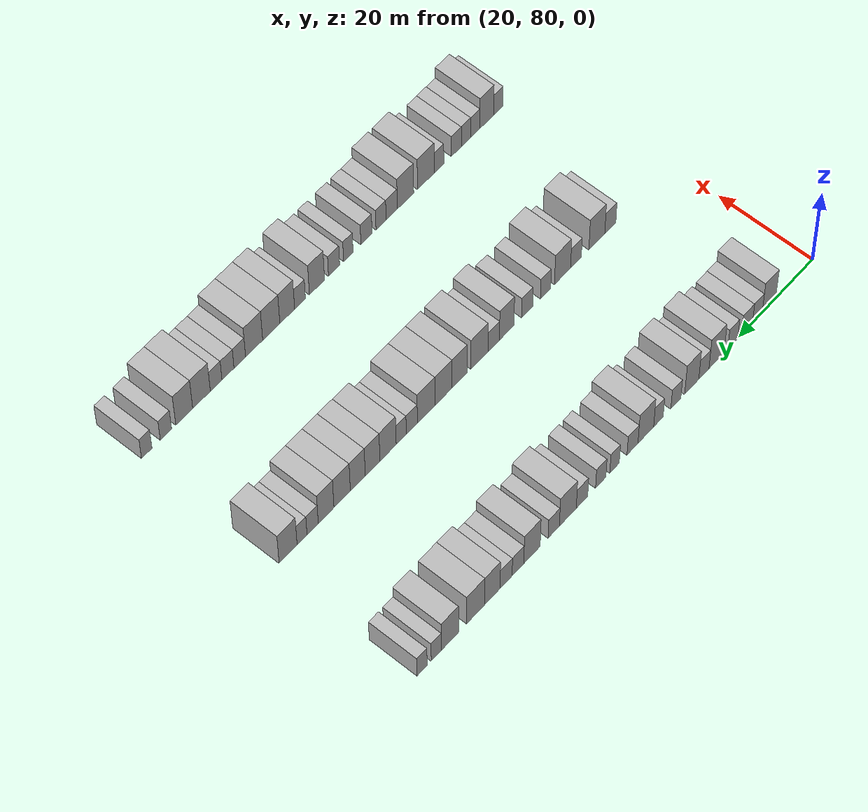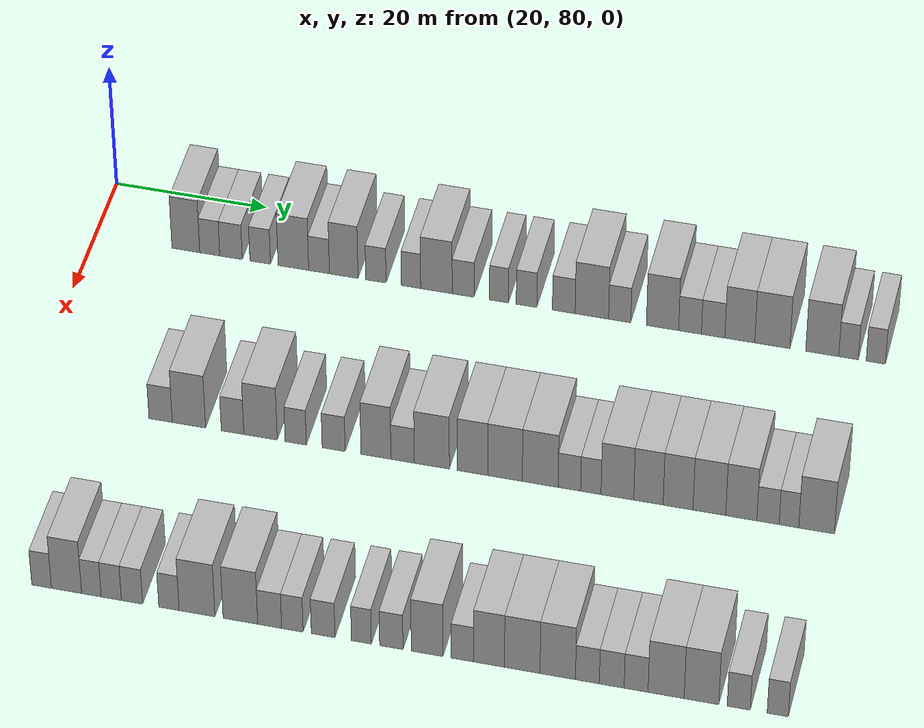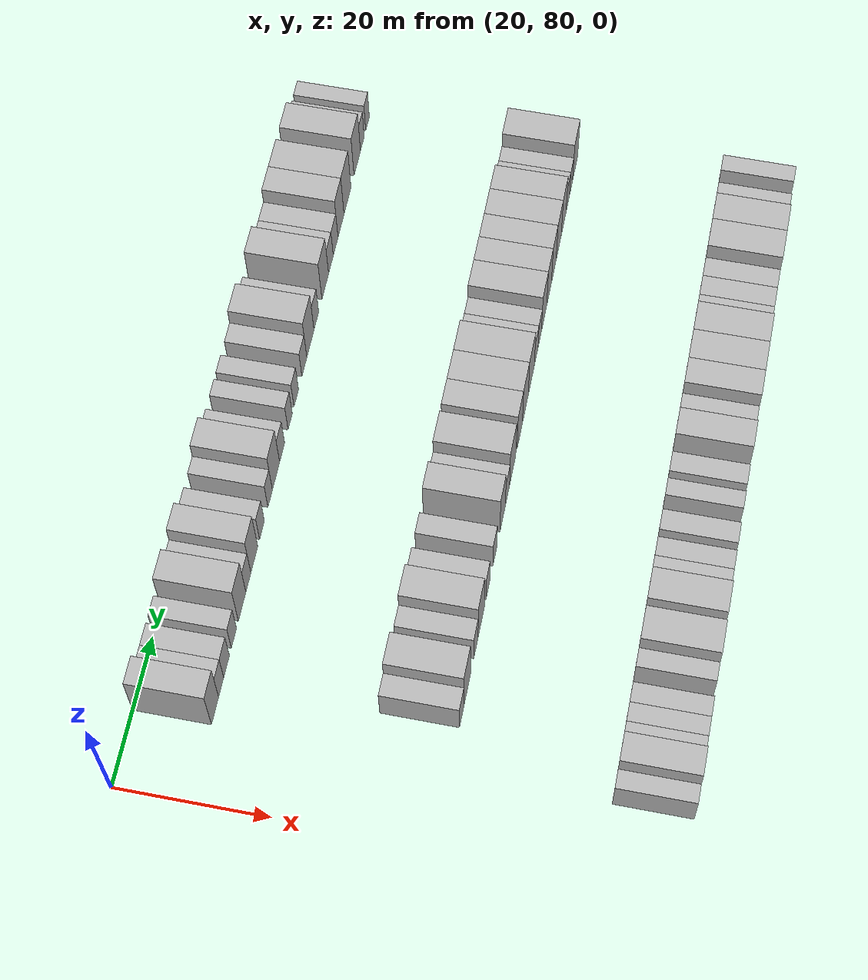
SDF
<sdf version="1.6">
 <world name="default">
  <model name="building_97">
   <static>1</static>
   <pose>25.0000 91.9924 0 0.000000 0.000000 0.000000</pose>
   <link name="link">
    <pose>0 0 4.50 0 0 0</pose>
    <collision name="collision"><geometry><box><size>10.0000 3.6640 9.0000</size></box></geometry></collision>
    <visual name="visual">
     <cast_shadows>0</cast_shadows>
     <geometry><box><size>10.0000 3.6640 9.0000</size></box></geometry>
     <material>
      <script>
       <uri>model://HANNAS_wall/materials/scripts</uri>
       <uri>model://HANNAS_wall/materials/textures</uri>
       <name>vrc/HANNAS_wall</name>
      </script>
     </material>
    </visual>
   </link>
  </model>
  <model name="building_98">
   <static>1</static>
   <pose>25.0000 95.1413 0 0.000000 0.000000 0.000000</pose>
   <link name="link">
    <pose>0 0 3.00 0 0 0</pose>
    <collision name="collision"><geometry><box><size>10.0000 2.6340 6.0000</size></box></geometry></collision>
    <visual name="visual">
     <cast_shadows>0</cast_shadows>
     <geometry><box><size>10.0000 2.6340 6.0000</size></box></geometry>
     <material>
      <script>
       <uri>model://HANNAS_wall/materials/scripts</uri>
       <uri>model://HANNAS_wall/materials/textures</uri>
       <name>vrc/HANNAS_wall</name>
      </script>
     </material>
    </visual>
   </link>
  </model>
  <model name="building_99">
   <static>1</static>
   <pose>25.0000 97.9421 0 0.000000 0.000000 0.000000</pose>
   <link name="link">
    <pose>0 0 3.00 0 0 0</pose>
    <collision name="collision"><geometry><box><size>10.0000 2.9676 6.0000</size></box></geometry></collision>
    <visual name="visual">
     <cast_shadows>0</cast_shadows>
     <geometry><box><size>10.0000 2.9676 6.0000</size></box></geometry>
     <material>
      <script>
       <uri>model://HANNAS_wall/materials/scripts</uri>
       <uri>model://HANNAS_wall/materials/textures</uri>
       <name>vrc/HANNAS_wall</name>
      </script>
     </material>
    </visual>
   </link>
  </model>
  <model name="building_100">
   <static>1</static>
   <pose>25.0000 101.7796 0 0.000000 0.000000 0.000000</pose>
   <link name="link">
    <pose>0 0 3.00 0 0 0</pose>
    <collision name="collision"><geometry><box><size>10.0000 2.7074 6.0000</size></box></geometry></collision>
    <visual name="visual">
     <cast_shadows>0</cast_shadows>
     <geometry><box><size>10.0000 2.7074 6.0000</size></box></geometry>
     <material>
      <script>
       <uri>model://HANNAS_wall/materials/scripts</uri>
       <uri>model://HANNAS_wall/materials/textures</uri>
       <name>vrc/HANNAS_wall</name>
      </script>
     </material>
    </visual>
   </link>
  </model>
  <model name="building_101">
   <static>1</static>
   <pose>25.0000 106.1406 0 0.000000 0.000000 0.000000</pose>
   <link name="link">
    <pose>0 0 4.50 0 0 0</pose>
    <collision name="collision"><geometry><box><size>10.0000 4.0146 9.0000</size></box></geometry></collision>
    <visual name="visual">
     <cast_shadows>0</cast_shadows>
     <geometry><box><size>10.0000 4.0146 9.0000</size></box></geometry>
     <material>
      <script>
       <uri>model://HANNAS_wall/materials/scripts</uri>
       <uri>model://HANNAS_wall/materials/textures</uri>
       <name>vrc/HANNAS_wall</name>
      </script>
     </material>
    </visual>
   </link>
  </model>
  <model name="building_102">
   <static>1</static>
   <pose>25.0000 109.5052 0 0.000000 0.000000 0.000000</pose>
   <link name="link">
    <pose>0 0 3.00 0 0 0</pose>
    <collision name="collision"><geometry><box><size>10.0000 2.7144 6.0000</size></box></geometry></collision>
    <visual name="visual">
     <cast_shadows>0</cast_shadows>
     <geometry><box><size>10.0000 2.7144 6.0000</size></box></geometry>
     <material>
      <script>
       <uri>model://HANNAS_wall/materials/scripts</uri>
       <uri>model://HANNAS_wall/materials/textures</uri>
       <name>vrc/HANNAS_wall</name>
      </script>
     </material>
    </visual>
   </link>
  </model>
  <model name="building_103">
   <static>1</static>
   <pose>25.0000 112.7325 0 0.000000 0.000000 0.000000</pose>
   <link name="link">
    <pose>0 0 4.50 0 0 0</pose>
    <collision name="collision"><geometry><box><size>10.0000 3.7403 9.0000</size></box></geometry></collision>
    <visual name="visual">
     <cast_shadows>0</cast_shadows>
     <geometry><box><size>10.0000 3.7403 9.0000</size></box></geometry>
     <material>
      <script>
       <uri>model://HANNAS_wall/materials/scripts</uri>
       <uri>model://HANNAS_wall/materials/textures</uri>
       <name>vrc/HANNAS_wall</name>
      </script>
     </material>
    </visual>
   </link>
  </model>
  <model name="building_104">
   <static>1</static>
   <pose>25.0000 116.9308 0 0.000000 0.000000 0.000000</pose>
   <link name="link">
    <pose>0 0 3.00 0 0 0</pose>
    <collision name="collision"><geometry><box><size>10.0000 2.6562 6.0000</size></box></geometry></collision>
    <visual name="visual">
     <cast_shadows>0</cast_shadows>
     <geometry><box><size>10.0000 2.6562 6.0000</size></box></geometry>
     <material>
      <script>
       <uri>model://HANNAS_wall/materials/scripts</uri>
       <uri>model://HANNAS_wall/materials/textures</uri>
       <name>vrc/HANNAS_wall</name>
      </script>
     </material>
    </visual>
   </link>
  </model>
  <model name="building_105">
   <static>1</static>
   <pose>25.0000 121.5091 0 0.000000 0.000000 0.000000</pose>
   <link name="link">
    <pose>0 0 3.00 0 0 0</pose>
    <collision name="collision"><geometry><box><size>10.0000 2.5004 6.0000</size></box></geometry></collision>
    <visual name="visual">
     <cast_shadows>0</cast_shadows>
     <geometry><box><size>10.0000 2.5004 6.0000</size></box></geometry>
     <material>
      <script>
       <uri>model://HANNAS_wall/materials/scripts</uri>
       <uri>model://HANNAS_wall/materials/textures</uri>
       <name>vrc/HANNAS_wall</name>
      </script>
     </material>
    </visual>
   </link>
  </model>
  <model name="building_106">
   <static>1</static>
   <pose>25.0000 124.8069 0 0.000000 0.000000 0.000000</pose>
   <link name="link">
    <pose>0 0 4.50 0 0 0</pose>
    <collision name="collision"><geometry><box><size>10.0000 4.0953 9.0000</size></box></geometry></collision>
    <visual name="visual">
     <cast_shadows>0</cast_shadows>
     <geometry><box><size>10.0000 4.0953 9.0000</size></box></geometry>
     <material>
      <script>
       <uri>model://HANNAS_wall/materials/scripts</uri>
       <uri>model://HANNAS_wall/materials/textures</uri>
       <name>vrc/HANNAS_wall</name>
      </script>
     </material>
    </visual>
   </link>
  </model>
  <model name="building_107">
   <static>1</static>
   <pose>25.0000 128.2800 0 0.000000 0.000000 0.000000</pose>
   <link name="link">
    <pose>0 0 3.00 0 0 0</pose>
    <collision name="collision"><geometry><box><size>10.0000 2.8509 6.0000</size></box></geometry></collision>
    <visual name="visual">
     <cast_shadows>0</cast_shadows>
     <geometry><box><size>10.0000 2.8509 6.0000</size></box></geometry>
     <material>
      <script>
       <uri>model://HANNAS_wall/materials/scripts</uri>
       <uri>model://HANNAS_wall/materials/textures</uri>
       <name>vrc/HANNAS_wall</name>
      </script>
     </material>
    </visual>
   </link>
  </model>
  <model name="building_108">
   <static>1</static>
   <pose>25.0000 132.9293 0 0.000000 0.000000 0.000000</pose>
   <link name="link">
    <pose>0 0 3.00 0 0 0</pose>
    <collision name="collision"><geometry><box><size>10.0000 2.4477 6.0000</size></box></geometry></collision>
    <visual name="visual">
     <cast_shadows>0</cast_shadows>
     <geometry><box><size>10.0000 2.4477 6.0000</size></box></geometry>
     <material>
      <script>
       <uri>model://HANNAS_wall/materials/scripts</uri>
       <uri>model://HANNAS_wall/materials/textures</uri>
       <name>vrc/HANNAS_wall</name>
      </script>
     </material>
    </visual>
   </link>
  </model>
  <model name="building_109">
   <static>1</static>
   <pose>25.0000 136.4878 0 0.000000 0.000000 0.000000</pose>
   <link name="link">
    <pose>0 0 3.00 0 0 0</pose>
    <collision name="collision"><geometry><box><size>10.0000 2.6693 6.0000</size></box></geometry></collision>
    <visual name="visual">
     <cast_shadows>0</cast_shadows>
     <geometry><box><size>10.0000 2.6693 6.0000</size></box></geometry>
     <material>
      <script>
       <uri>model://HANNAS_wall/materials/scripts</uri>
       <uri>model://HANNAS_wall/materials/textures</uri>
       <name>vrc/HANNAS_wall</name>
      </script>
     </material>
    </visual>
   </link>
  </model>
  <model name="building_110">
   <static>1</static>
   <pose>25.0000 141.2840 0 0.000000 0.000000 0.000000</pose>
   <link name="link">
    <pose>0 0 3.00 0 0 0</pose>
    <collision name="collision"><geometry><box><size>10.0000 2.9231 6.0000</size></box></geometry></collision>
    <visual name="visual">
     <cast_shadows>0</cast_shadows>
     <geometry><box><size>10.0000 2.9231 6.0000</size></box></geometry>
     <material>
      <script>
       <uri>model://HANNAS_wall/materials/scripts</uri>
       <uri>model://HANNAS_wall/materials/textures</uri>
       <name>vrc/HANNAS_wall</name>
      </script>
     </material>
    </visual>
   </link>
  </model>
  <model name="building_111">
   <static>1</static>
   <pose>25.0000 144.8961 0 0.000000 0.000000 0.000000</pose>
   <link name="link">
    <pose>0 0 4.50 0 0 0</pose>
    <collision name="collision"><geometry><box><size>10.0000 4.3011 9.0000</size></box></geometry></collision>
    <visual name="visual">
     <cast_shadows>0</cast_shadows>
     <geometry><box><size>10.0000 4.3011 9.0000</size></box></geometry>
     <material>
      <script>
       <uri>model://HANNAS_wall/materials/scripts</uri>
       <uri>model://HANNAS_wall/materials/textures</uri>
       <name>vrc/HANNAS_wall</name>
      </script>
     </material>
    </visual>
   </link>
  </model>
  <model name="building_112">
   <static>1</static>
   <pose>25.0000 148.4745 0 0.000000 0.000000 0.000000</pose>
   <link name="link">
    <pose>0 0 3.00 0 0 0</pose>
    <collision name="collision"><geometry><box><size>10.0000 2.8557 6.0000</size></box></geometry></collision>
    <visual name="visual">
     <cast_shadows>0</cast_shadows>
     <geometry><box><size>10.0000 2.8557 6.0000</size></box></geometry>
     <material>
      <script>
       <uri>model://HANNAS_wall/materials/scripts</uri>
       <uri>model://HANNAS_wall/materials/textures</uri>
       <name>vrc/HANNAS_wall</name>
      </script>
     </material>
    </visual>
   </link>
  </model>
  <model name="building_113">
   <static>1</static>
   <pose>25.0000 153.9620 0 0.000000 0.000000 0.000000</pose>
   <link name="link">
    <pose>0 0 4.50 0 0 0</pose>
    <collision name="collision"><geometry><box><size>10.0000 4.1194 9.0000</size></box></geometry></collision>
    <visual name="visual">
     <cast_shadows>0</cast_shadows>
     <geometry><box><size>10.0000 4.1194 9.0000</size></box></geometry>
     <material>
      <script>
       <uri>model://HANNAS_wall/materials/scripts</uri>
       <uri>model://HANNAS_wall/materials/textures</uri>
       <name>vrc/HANNAS_wall</name>
      </script>
     </material>
    </visual>
   </link>
  </model>
  <model name="building_114">
   <static>1</static>
   <pose>25.0000 157.4809 0 0.000000 0.000000 0.000000</pose>
   <link name="link">
    <pose>0 0 3.00 0 0 0</pose>
    <collision name="collision"><geometry><box><size>10.0000 2.9184 6.0000</size></box></geometry></collision>
    <visual name="visual">
     <cast_shadows>0</cast_shadows>
     <geometry><box><size>10.0000 2.9184 6.0000</size></box></geometry>
     <material>
      <script>
       <uri>model://HANNAS_wall/materials/scripts</uri>
       <uri>model://HANNAS_wall/materials/textures</uri>
       <name>vrc/HANNAS_wall</name>
      </script>
     </material>
    </visual>
   </link>
  </model>
  <model name="building_115">
   <static>1</static>
   <pose>25.0000 160.4388 0 0.000000 0.000000 0.000000</pose>
   <link name="link">
    <pose>0 0 3.00 0 0 0</pose>
    <collision name="collision"><geometry><box><size>10.0000 2.9974 6.0000</size></box></geometry></collision>
    <visual name="visual">
     <cast_shadows>0</cast_shadows>
     <geometry><box><size>10.0000 2.9974 6.0000</size></box></geometry>
     <material>
      <script>
       <uri>model://HANNAS_wall/materials/scripts</uri>
       <uri>model://HANNAS_wall/materials/textures</uri>
       <name>vrc/HANNAS_wall</name>
      </script>
     </material>
    </visual>
   </link>
  </model>
  <model name="building_116">
   <static>1</static>
   <pose>25.0000 163.8420 0 0.000000 0.000000 0.000000</pose>
   <link name="link">
    <pose>0 0 4.50 0 0 0</pose>
    <collision name="collision"><geometry><box><size>10.0000 3.8090 9.0000</size></box></geometry></collision>
    <visual name="visual">
     <cast_shadows>0</cast_shadows>
     <geometry><box><size>10.0000 3.8090 9.0000</size></box></geometry>
     <material>
      <script>
       <uri>model://HANNAS_wall/materials/scripts</uri>
       <uri>model://HANNAS_wall/materials/textures</uri>
       <name>vrc/HANNAS_wall</name>
      </script>
     </material>
    </visual>
   </link>
  </model>
  <model name="building_117">
   <static>1</static>
   <pose>25.0000 167.9841 0 0.000000 0.000000 0.000000</pose>
   <link name="link">
    <pose>0 0 4.50 0 0 0</pose>
    <collision name="collision"><geometry><box><size>10.0000 4.4752 9.0000</size></box></geometry></collision>
    <visual name="visual">
     <cast_shadows>0</cast_shadows>
     <geometry><box><size>10.0000 4.4752 9.0000</size></box></geometry>
     <material>
      <script>
       <uri>model://HANNAS_wall/materials/scripts</uri>
       <uri>model://HANNAS_wall/materials/textures</uri>
       <name>vrc/HANNAS_wall</name>
      </script>
     </material>
    </visual>
   </link>
  </model>
  <model name="building_118">
   <static>1</static>
   <pose>25.0000 174.3174 0 0.000000 0.000000 0.000000</pose>
   <link name="link">
    <pose>0 0 4.50 0 0 0</pose>
    <collision name="collision"><geometry><box><size>10.0000 4.1913 9.0000</size></box></geometry></collision>
    <visual name="visual">
     <cast_shadows>0</cast_shadows>
     <geometry><box><size>10.0000 4.1913 9.0000</size></box></geometry>
     <material>
      <script>
       <uri>model://HANNAS_wall/materials/scripts</uri>
       <uri>model://HANNAS_wall/materials/textures</uri>
       <name>vrc/HANNAS_wall</name>
      </script>
     </material>
    </visual>
   </link>
  </model>
  <model name="building_119">
   <static>1</static>
   <pose>25.0000 177.6485 0 0.000000 0.000000 0.000000</pose>
   <link name="link">
    <pose>0 0 3.00 0 0 0</pose>
    <collision name="collision"><geometry><box><size>10.0000 2.4710 6.0000</size></box></geometry></collision>
    <visual name="visual">
     <cast_shadows>0</cast_shadows>
     <geometry><box><size>10.0000 2.4710 6.0000</size></box></geometry>
     <material>
      <script>
       <uri>model://HANNAS_wall/materials/scripts</uri>
       <uri>model://HANNAS_wall/materials/textures</uri>
       <name>vrc/HANNAS_wall</name>
      </script>
     </material>
    </visual>
   </link>
  </model>
  <model name="building_120">
   <static>1</static>
   <pose>25.0000 181.0967 0 0.000000 0.000000 0.000000</pose>
   <link name="link">
    <pose>0 0 3.00 0 0 0</pose>
    <collision name="collision"><geometry><box><size>10.0000 2.4254 6.0000</size></box></geometry></collision>
    <visual name="visual">
     <cast_shadows>0</cast_shadows>
     <geometry><box><size>10.0000 2.4254 6.0000</size></box></geometry>
     <material>
      <script>
       <uri>model://HANNAS_wall/materials/scripts</uri>
       <uri>model://HANNAS_wall/materials/textures</uri>
       <name>vrc/HANNAS_wall</name>
      </script>
     </material>
    </visual>
   </link>
  </model>
  <model name="building_237">
   <static>1</static>
   <pose>55.0000 97.0624 0 0.000000 0.000000 0.000000</pose>
   <link name="link">
    <pose>0 0 3.00 0 0 0</pose>
    <collision name="collision"><geometry><box><size>10.0000 2.9714 6.0000</size></box></geometry></collision>
    <visual name="visual">
     <cast_shadows>0</cast_shadows>
     <geometry><box><size>10.0000 2.9714 6.0000</size></box></geometry>
     <material>
      <script>
       <uri>model://HANNAS_wall/materials/scripts</uri>
       <uri>model://HANNAS_wall/materials/textures</uri>
       <name>vrc/HANNAS_wall</name>
      </script>
     </material>
    </visual>
   </link>
  </model>
  <model name="building_238">
   <static>1</static>
   <pose>55.0000 100.6718 0 0.000000 0.000000 0.000000</pose>
   <link name="link">
    <pose>0 0 4.50 0 0 0</pose>
    <collision name="collision"><geometry><box><size>10.0000 4.2473 9.0000</size></box></geometry></collision>
    <visual name="visual">
     <cast_shadows>0</cast_shadows>
     <geometry><box><size>10.0000 4.2473 9.0000</size></box></geometry>
     <material>
      <script>
       <uri>model://HANNAS_wall/materials/scripts</uri>
       <uri>model://HANNAS_wall/materials/textures</uri>
       <name>vrc/HANNAS_wall</name>
      </script>
     </material>
    </visual>
   </link>
  </model>
  <model name="building_239">
   <static>1</static>
   <pose>55.0000 106.2310 0 0.000000 0.000000 0.000000</pose>
   <link name="link">
    <pose>0 0 3.00 0 0 0</pose>
    <collision name="collision"><geometry><box><size>10.0000 2.8713 6.0000</size></box></geometry></collision>
    <visual name="visual">
     <cast_shadows>0</cast_shadows>
     <geometry><box><size>10.0000 2.8713 6.0000</size></box></geometry>
     <material>
      <script>
       <uri>model://HANNAS_wall/materials/scripts</uri>
       <uri>model://HANNAS_wall/materials/textures</uri>
       <name>vrc/HANNAS_wall</name>
      </script>
     </material>
    </visual>
   </link>
  </model>
  <model name="building_240">
   <static>1</static>
   <pose>55.0000 109.7880 0 0.000000 0.000000 0.000000</pose>
   <link name="link">
    <pose>0 0 4.50 0 0 0</pose>
    <collision name="collision"><geometry><box><size>10.0000 4.2426 9.0000</size></box></geometry></collision>
    <visual name="visual">
     <cast_shadows>0</cast_shadows>
     <geometry><box><size>10.0000 4.2426 9.0000</size></box></geometry>
     <material>
      <script>
       <uri>model://HANNAS_wall/materials/scripts</uri>
       <uri>model://HANNAS_wall/materials/textures</uri>
       <name>vrc/HANNAS_wall</name>
      </script>
     </material>
    </visual>
   </link>
  </model>
  <model name="building_241">
   <static>1</static>
   <pose>55.0000 114.2538 0 0.000000 0.000000 0.000000</pose>
   <link name="link">
    <pose>0 0 3.00 0 0 0</pose>
    <collision name="collision"><geometry><box><size>10.0000 2.6891 6.0000</size></box></geometry></collision>
    <visual name="visual">
     <cast_shadows>0</cast_shadows>
     <geometry><box><size>10.0000 2.6891 6.0000</size></box></geometry>
     <material>
      <script>
       <uri>model://HANNAS_wall/materials/scripts</uri>
       <uri>model://HANNAS_wall/materials/textures</uri>
       <name>vrc/HANNAS_wall</name>
      </script>
     </material>
    </visual>
   </link>
  </model>
  <model name="building_242">
   <static>1</static>
   <pose>55.0000 119.0511 0 0.000000 0.000000 0.000000</pose>
   <link name="link">
    <pose>0 0 3.00 0 0 0</pose>
    <collision name="collision"><geometry><box><size>10.0000 2.9055 6.0000</size></box></geometry></collision>
    <visual name="visual">
     <cast_shadows>0</cast_shadows>
     <geometry><box><size>10.0000 2.9055 6.0000</size></box></geometry>
     <material>
      <script>
       <uri>model://HANNAS_wall/materials/scripts</uri>
       <uri>model://HANNAS_wall/materials/textures</uri>
       <name>vrc/HANNAS_wall</name>
      </script>
     </material>
    </visual>
   </link>
  </model>
  <model name="building_243">
   <static>1</static>
   <pose>55.0000 124.3893 0 0.000000 0.000000 0.000000</pose>
   <link name="link">
    <pose>0 0 4.50 0 0 0</pose>
    <collision name="collision"><geometry><box><size>10.0000 3.7709 9.0000</size></box></geometry></collision>
    <visual name="visual">
     <cast_shadows>0</cast_shadows>
     <geometry><box><size>10.0000 3.7709 9.0000</size></box></geometry>
     <material>
      <script>
       <uri>model://HANNAS_wall/materials/scripts</uri>
       <uri>model://HANNAS_wall/materials/textures</uri>
       <name>vrc/HANNAS_wall</name>
      </script>
     </material>
    </visual>
   </link>
  </model>
  <model name="building_244">
   <static>1</static>
   <pose>55.0000 127.7435 0 0.000000 0.000000 0.000000</pose>
   <link name="link">
    <pose>0 0 3.00 0 0 0</pose>
    <collision name="collision"><geometry><box><size>10.0000 2.9374 6.0000</size></box></geometry></collision>
    <visual name="visual">
     <cast_shadows>0</cast_shadows>
     <geometry><box><size>10.0000 2.9374 6.0000</size></box></geometry>
     <material>
      <script>
       <uri>model://HANNAS_wall/materials/scripts</uri>
       <uri>model://HANNAS_wall/materials/textures</uri>
       <name>vrc/HANNAS_wall</name>
      </script>
     </material>
    </visual>
   </link>
  </model>
  <model name="building_245">
   <static>1</static>
   <pose>55.0000 131.4156 0 0.000000 0.000000 0.000000</pose>
   <link name="link">
    <pose>0 0 4.50 0 0 0</pose>
    <collision name="collision"><geometry><box><size>10.0000 4.4068 9.0000</size></box></geometry></collision>
    <visual name="visual">
     <cast_shadows>0</cast_shadows>
     <geometry><box><size>10.0000 4.4068 9.0000</size></box></geometry>
     <material>
      <script>
       <uri>model://HANNAS_wall/materials/scripts</uri>
       <uri>model://HANNAS_wall/materials/textures</uri>
       <name>vrc/HANNAS_wall</name>
      </script>
     </material>
    </visual>
   </link>
  </model>
  <model name="building_246">
   <static>1</static>
   <pose>55.0000 136.5172 0 0.000000 0.000000 0.000000</pose>
   <link name="link">
    <pose>0 0 4.50 0 0 0</pose>
    <collision name="collision"><geometry><box><size>10.0000 3.7964 9.0000</size></box></geometry></collision>
    <visual name="visual">
     <cast_shadows>0</cast_shadows>
     <geometry><box><size>10.0000 3.7964 9.0000</size></box></geometry>
     <material>
      <script>
       <uri>model://HANNAS_wall/materials/scripts</uri>
       <uri>model://HANNAS_wall/materials/textures</uri>
       <name>vrc/HANNAS_wall</name>
      </script>
     </material>
    </visual>
   </link>
  </model>
  <model name="building_247">
   <static>1</static>
   <pose>55.0000 140.5776 0 0.000000 0.000000 0.000000</pose>
   <link name="link">
    <pose>0 0 4.50 0 0 0</pose>
    <collision name="collision"><geometry><box><size>10.0000 4.3244 9.0000</size></box></geometry></collision>
    <visual name="visual">
     <cast_shadows>0</cast_shadows>
     <geometry><box><size>10.0000 4.3244 9.0000</size></box></geometry>
     <material>
      <script>
       <uri>model://HANNAS_wall/materials/scripts</uri>
       <uri>model://HANNAS_wall/materials/textures</uri>
       <name>vrc/HANNAS_wall</name>
      </script>
     </material>
    </visual>
   </link>
  </model>
  <model name="building_248">
   <static>1</static>
   <pose>55.0000 144.9732 0 0.000000 0.000000 0.000000</pose>
   <link name="link">
    <pose>0 0 4.50 0 0 0</pose>
    <collision name="collision"><geometry><box><size>10.0000 4.4669 9.0000</size></box></geometry></collision>
    <visual name="visual">
     <cast_shadows>0</cast_shadows>
     <geometry><box><size>10.0000 4.4669 9.0000</size></box></geometry>
     <material>
      <script>
       <uri>model://HANNAS_wall/materials/scripts</uri>
       <uri>model://HANNAS_wall/materials/textures</uri>
       <name>vrc/HANNAS_wall</name>
      </script>
     </material>
    </visual>
   </link>
  </model>
  <model name="building_249">
   <static>1</static>
   <pose>55.0000 148.6064 0 0.000000 0.000000 0.000000</pose>
   <link name="link">
    <pose>0 0 3.00 0 0 0</pose>
    <collision name="collision"><geometry><box><size>10.0000 2.7994 6.0000</size></box></geometry></collision>
    <visual name="visual">
     <cast_shadows>0</cast_shadows>
     <geometry><box><size>10.0000 2.7994 6.0000</size></box></geometry>
     <material>
      <script>
       <uri>model://HANNAS_wall/materials/scripts</uri>
       <uri>model://HANNAS_wall/materials/textures</uri>
       <name>vrc/HANNAS_wall</name>
      </script>
     </material>
    </visual>
   </link>
  </model>
  <model name="building_250">
   <static>1</static>
   <pose>55.0000 151.2725 0 0.000000 0.000000 0.000000</pose>
   <link name="link">
    <pose>0 0 3.00 0 0 0</pose>
    <collision name="collision"><geometry><box><size>10.0000 2.5328 6.0000</size></box></geometry></collision>
    <visual name="visual">
     <cast_shadows>0</cast_shadows>
     <geometry><box><size>10.0000 2.5328 6.0000</size></box></geometry>
     <material>
      <script>
       <uri>model://HANNAS_wall/materials/scripts</uri>
       <uri>model://HANNAS_wall/materials/textures</uri>
       <name>vrc/HANNAS_wall</name>
      </script>
     </material>
    </visual>
   </link>
  </model>
  <model name="building_251">
   <static>1</static>
   <pose>55.0000 154.5683 0 0.000000 0.000000 0.000000</pose>
   <link name="link">
    <pose>0 0 4.50 0 0 0</pose>
    <collision name="collision"><geometry><box><size>10.0000 4.0588 9.0000</size></box></geometry></collision>
    <visual name="visual">
     <cast_shadows>0</cast_shadows>
     <geometry><box><size>10.0000 4.0588 9.0000</size></box></geometry>
     <material>
      <script>
       <uri>model://HANNAS_wall/materials/scripts</uri>
       <uri>model://HANNAS_wall/materials/textures</uri>
       <name>vrc/HANNAS_wall</name>
      </script>
     </material>
    </visual>
   </link>
  </model>
  <model name="building_252">
   <static>1</static>
   <pose>55.0000 158.4176 0 0.000000 0.000000 0.000000</pose>
   <link name="link">
    <pose>0 0 4.50 0 0 0</pose>
    <collision name="collision"><geometry><box><size>10.0000 3.6398 9.0000</size></box></geometry></collision>
    <visual name="visual">
     <cast_shadows>0</cast_shadows>
     <geometry><box><size>10.0000 3.6398 9.0000</size></box></geometry>
     <material>
      <script>
       <uri>model://HANNAS_wall/materials/scripts</uri>
       <uri>model://HANNAS_wall/materials/textures</uri>
       <name>vrc/HANNAS_wall</name>
      </script>
     </material>
    </visual>
   </link>
  </model>
  <model name="building_253">
   <static>1</static>
   <pose>55.0000 162.0829 0 0.000000 0.000000 0.000000</pose>
   <link name="link">
    <pose>0 0 4.50 0 0 0</pose>
    <collision name="collision"><geometry><box><size>10.0000 3.6907 9.0000</size></box></geometry></collision>
    <visual name="visual">
     <cast_shadows>0</cast_shadows>
     <geometry><box><size>10.0000 3.6907 9.0000</size></box></geometry>
     <material>
      <script>
       <uri>model://HANNAS_wall/materials/scripts</uri>
       <uri>model://HANNAS_wall/materials/textures</uri>
       <name>vrc/HANNAS_wall</name>
      </script>
     </material>
    </visual>
   </link>
  </model>
  <model name="building_254">
   <static>1</static>
   <pose>55.0000 165.9465 0 0.000000 0.000000 0.000000</pose>
   <link name="link">
    <pose>0 0 4.50 0 0 0</pose>
    <collision name="collision"><geometry><box><size>10.0000 4.0365 9.0000</size></box></geometry></collision>
    <visual name="visual">
     <cast_shadows>0</cast_shadows>
     <geometry><box><size>10.0000 4.0365 9.0000</size></box></geometry>
     <material>
      <script>
       <uri>model://HANNAS_wall/materials/scripts</uri>
       <uri>model://HANNAS_wall/materials/textures</uri>
       <name>vrc/HANNAS_wall</name>
      </script>
     </material>
    </visual>
   </link>
  </model>
  <model name="building_255">
   <static>1</static>
   <pose>55.0000 169.8838 0 0.000000 0.000000 0.000000</pose>
   <link name="link">
    <pose>0 0 4.50 0 0 0</pose>
    <collision name="collision"><geometry><box><size>10.0000 3.8382 9.0000</size></box></geometry></collision>
    <visual name="visual">
     <cast_shadows>0</cast_shadows>
     <geometry><box><size>10.0000 3.8382 9.0000</size></box></geometry>
     <material>
      <script>
       <uri>model://HANNAS_wall/materials/scripts</uri>
       <uri>model://HANNAS_wall/materials/textures</uri>
       <name>vrc/HANNAS_wall</name>
      </script>
     </material>
    </visual>
   </link>
  </model>
  <model name="building_256">
   <static>1</static>
   <pose>55.0000 173.1745 0 0.000000 0.000000 0.000000</pose>
   <link name="link">
    <pose>0 0 3.00 0 0 0</pose>
    <collision name="collision"><geometry><box><size>10.0000 2.7434 6.0000</size></box></geometry></collision>
    <visual name="visual">
     <cast_shadows>0</cast_shadows>
     <geometry><box><size>10.0000 2.7434 6.0000</size></box></geometry>
     <material>
      <script>
       <uri>model://HANNAS_wall/materials/scripts</uri>
       <uri>model://HANNAS_wall/materials/textures</uri>
       <name>vrc/HANNAS_wall</name>
      </script>
     </material>
    </visual>
   </link>
  </model>
  <model name="building_257">
   <static>1</static>
   <pose>55.0000 175.7481 0 0.000000 0.000000 0.000000</pose>
   <link name="link">
    <pose>0 0 3.00 0 0 0</pose>
    <collision name="collision"><geometry><box><size>10.0000 2.4038 6.0000</size></box></geometry></collision>
    <visual name="visual">
     <cast_shadows>0</cast_shadows>
     <geometry><box><size>10.0000 2.4038 6.0000</size></box></geometry>
     <material>
      <script>
       <uri>model://HANNAS_wall/materials/scripts</uri>
       <uri>model://HANNAS_wall/materials/textures</uri>
       <name>vrc/HANNAS_wall</name>
      </script>
     </material>
    </visual>
   </link>
  </model>
  <model name="building_258">
   <static>1</static>
   <pose>55.0000 179.1330 0 0.000000 0.000000 0.000000</pose>
   <link name="link">
    <pose>0 0 4.50 0 0 0</pose>
    <collision name="collision"><geometry><box><size>10.0000 4.3659 9.0000</size></box></geometry></collision>
    <visual name="visual">
     <cast_shadows>0</cast_shadows>
     <geometry><box><size>10.0000 4.3659 9.0000</size></box></geometry>
     <material>
      <script>
       <uri>model://HANNAS_wall/materials/scripts</uri>
       <uri>model://HANNAS_wall/materials/textures</uri>
       <name>vrc/HANNAS_wall</name>
      </script>
     </material>
    </visual>
   </link>
  </model>
  <model name="building_379">
   <static>1</static>
   <pose>85.0000 90.7386 0 0.000000 0.000000 0.000000</pose>
   <link name="link">
    <pose>0 0 3.00 0 0 0</pose>
    <collision name="collision"><geometry><box><size>10.0000 2.4410 6.0000</size></box></geometry></collision>
    <visual name="visual">
     <cast_shadows>0</cast_shadows>
     <geometry><box><size>10.0000 2.4410 6.0000</size></box></geometry>
     <material>
      <script>
       <uri>model://HANNAS_wall/materials/scripts</uri>
       <uri>model://HANNAS_wall/materials/textures</uri>
       <name>vrc/HANNAS_wall</name>
      </script>
     </material>
    </visual>
   </link>
  </model>
  <model name="building_380">
   <static>1</static>
   <pose>85.0000 93.8310 0 0.000000 0.000000 0.000000</pose>
   <link name="link">
    <pose>0 0 4.50 0 0 0</pose>
    <collision name="collision"><geometry><box><size>10.0000 3.7437 9.0000</size></box></geometry></collision>
    <visual name="visual">
     <cast_shadows>0</cast_shadows>
     <geometry><box><size>10.0000 3.7437 9.0000</size></box></geometry>
     <material>
      <script>
       <uri>model://HANNAS_wall/materials/scripts</uri>
       <uri>model://HANNAS_wall/materials/textures</uri>
       <name>vrc/HANNAS_wall</name>
      </script>
     </material>
    </visual>
   </link>
  </model>
  <model name="building_381">
   <static>1</static>
   <pose>85.0000 96.9101 0 0.000000 0.000000 0.000000</pose>
   <link name="link">
    <pose>0 0 3.00 0 0 0</pose>
    <collision name="collision"><geometry><box><size>10.0000 2.4145 6.0000</size></box></geometry></collision>
    <visual name="visual">
     <cast_shadows>0</cast_shadows>
     <geometry><box><size>10.0000 2.4145 6.0000</size></box></geometry>
     <material>
      <script>
       <uri>model://HANNAS_wall/materials/scripts</uri>
       <uri>model://HANNAS_wall/materials/textures</uri>
       <name>vrc/HANNAS_wall</name>
      </script>
     </material>
    </visual>
   </link>
  </model>
  <model name="building_382">
   <static>1</static>
   <pose>85.0000 99.3674 0 0.000000 0.000000 0.000000</pose>
   <link name="link">
    <pose>0 0 3.00 0 0 0</pose>
    <collision name="collision"><geometry><box><size>10.0000 2.5000 6.0000</size></box></geometry></collision>
    <visual name="visual">
     <cast_shadows>0</cast_shadows>
     <geometry><box><size>10.0000 2.5000 6.0000</size></box></geometry>
     <material>
      <script>
       <uri>model://HANNAS_wall/materials/scripts</uri>
       <uri>model://HANNAS_wall/materials/textures</uri>
       <name>vrc/HANNAS_wall</name>
      </script>
     </material>
    </visual>
   </link>
  </model>
  <model name="building_383">
   <static>1</static>
   <pose>85.0000 101.9307 0 0.000000 0.000000 0.000000</pose>
   <link name="link">
    <pose>0 0 3.00 0 0 0</pose>
    <collision name="collision"><geometry><box><size>10.0000 2.6267 6.0000</size></box></geometry></collision>
    <visual name="visual">
     <cast_shadows>0</cast_shadows>
     <geometry><box><size>10.0000 2.6267 6.0000</size></box></geometry>
     <material>
      <script>
       <uri>model://HANNAS_wall/materials/scripts</uri>
       <uri>model://HANNAS_wall/materials/textures</uri>
       <name>vrc/HANNAS_wall</name>
      </script>
     </material>
    </visual>
   </link>
  </model>
  <model name="building_384">
   <static>1</static>
   <pose>85.0000 106.4931 0 0.000000 0.000000 0.000000</pose>
   <link name="link">
    <pose>0 0 3.00 0 0 0</pose>
    <collision name="collision"><geometry><box><size>10.0000 2.4981 6.0000</size></box></geometry></collision>
    <visual name="visual">
     <cast_shadows>0</cast_shadows>
     <geometry><box><size>10.0000 2.4981 6.0000</size></box></geometry>
     <material>
      <script>
       <uri>model://HANNAS_wall/materials/scripts</uri>
       <uri>model://HANNAS_wall/materials/textures</uri>
       <name>vrc/HANNAS_wall</name>
      </script>
     </material>
    </visual>
   </link>
  </model>
  <model name="building_385">
   <static>1</static>
   <pose>85.0000 109.9508 0 0.000000 0.000000 0.000000</pose>
   <link name="link">
    <pose>0 0 4.50 0 0 0</pose>
    <collision name="collision"><geometry><box><size>10.0000 4.4173 9.0000</size></box></geometry></collision>
    <visual name="visual">
     <cast_shadows>0</cast_shadows>
     <geometry><box><size>10.0000 4.4173 9.0000</size></box></geometry>
     <material>
      <script>
       <uri>model://HANNAS_wall/materials/scripts</uri>
       <uri>model://HANNAS_wall/materials/textures</uri>
       <name>vrc/HANNAS_wall</name>
      </script>
     </material>
    </visual>
   </link>
  </model>
  <model name="building_386">
   <static>1</static>
   <pose>85.0000 115.2826 0 0.000000 0.000000 0.000000</pose>
   <link name="link">
    <pose>0 0 4.50 0 0 0</pose>
    <collision name="collision"><geometry><box><size>10.0000 4.2464 9.0000</size></box></geometry></collision>
    <visual name="visual">
     <cast_shadows>0</cast_shadows>
     <geometry><box><size>10.0000 4.2464 9.0000</size></box></geometry>
     <material>
      <script>
       <uri>model://HANNAS_wall/materials/scripts</uri>
       <uri>model://HANNAS_wall/materials/textures</uri>
       <name>vrc/HANNAS_wall</name>
      </script>
     </material>
    </visual>
   </link>
  </model>
  <model name="building_387">
   <static>1</static>
   <pose>85.0000 118.8717 0 0.000000 0.000000 0.000000</pose>
   <link name="link">
    <pose>0 0 3.00 0 0 0</pose>
    <collision name="collision"><geometry><box><size>10.0000 2.9318 6.0000</size></box></geometry></collision>
    <visual name="visual">
     <cast_shadows>0</cast_shadows>
     <geometry><box><size>10.0000 2.9318 6.0000</size></box></geometry>
     <material>
      <script>
       <uri>model://HANNAS_wall/materials/scripts</uri>
       <uri>model://HANNAS_wall/materials/textures</uri>
       <name>vrc/HANNAS_wall</name>
      </script>
     </material>
    </visual>
   </link>
  </model>
  <model name="building_388">
   <static>1</static>
   <pose>85.0000 121.6494 0 0.000000 0.000000 0.000000</pose>
   <link name="link">
    <pose>0 0 3.00 0 0 0</pose>
    <collision name="collision"><geometry><box><size>10.0000 2.6235 6.0000</size></box></geometry></collision>
    <visual name="visual">
     <cast_shadows>0</cast_shadows>
     <geometry><box><size>10.0000 2.6235 6.0000</size></box></geometry>
     <material>
      <script>
       <uri>model://HANNAS_wall/materials/scripts</uri>
       <uri>model://HANNAS_wall/materials/textures</uri>
       <name>vrc/HANNAS_wall</name>
      </script>
     </material>
    </visual>
   </link>
  </model>
  <model name="building_389">
   <static>1</static>
   <pose>85.0000 125.4052 0 0.000000 0.000000 0.000000</pose>
   <link name="link">
    <pose>0 0 3.00 0 0 0</pose>
    <collision name="collision"><geometry><box><size>10.0000 2.8880 6.0000</size></box></geometry></collision>
    <visual name="visual">
     <cast_shadows>0</cast_shadows>
     <geometry><box><size>10.0000 2.8880 6.0000</size></box></geometry>
     <material>
      <script>
       <uri>model://HANNAS_wall/materials/scripts</uri>
       <uri>model://HANNAS_wall/materials/textures</uri>
       <name>vrc/HANNAS_wall</name>
      </script>
     </material>
    </visual>
   </link>
  </model>
  <model name="building_390">
   <static>1</static>
   <pose>85.0000 130.0667 0 0.000000 0.000000 0.000000</pose>
   <link name="link">
    <pose>0 0 3.00 0 0 0</pose>
    <collision name="collision"><geometry><box><size>10.0000 2.4351 6.0000</size></box></geometry></collision>
    <visual name="visual">
     <cast_shadows>0</cast_shadows>
     <geometry><box><size>10.0000 2.4351 6.0000</size></box></geometry>
     <material>
      <script>
       <uri>model://HANNAS_wall/materials/scripts</uri>
       <uri>model://HANNAS_wall/materials/textures</uri>
       <name>vrc/HANNAS_wall</name>
      </script>
     </material>
    </visual>
   </link>
  </model>
  <model name="building_391">
   <static>1</static>
   <pose>85.0000 133.7063 0 0.000000 0.000000 0.000000</pose>
   <link name="link">
    <pose>0 0 3.00 0 0 0</pose>
    <collision name="collision"><geometry><box><size>10.0000 2.8440 6.0000</size></box></geometry></collision>
    <visual name="visual">
     <cast_shadows>0</cast_shadows>
     <geometry><box><size>10.0000 2.8440 6.0000</size></box></geometry>
     <material>
      <script>
       <uri>model://HANNAS_wall/materials/scripts</uri>
       <uri>model://HANNAS_wall/materials/textures</uri>
       <name>vrc/HANNAS_wall</name>
      </script>
     </material>
    </visual>
   </link>
  </model>
  <model name="building_392">
   <static>1</static>
   <pose>85.0000 138.0509 0 0.000000 0.000000 0.000000</pose>
   <link name="link">
    <pose>0 0 4.50 0 0 0</pose>
    <collision name="collision"><geometry><box><size>10.0000 3.8452 9.0000</size></box></geometry></collision>
    <visual name="visual">
     <cast_shadows>0</cast_shadows>
     <geometry><box><size>10.0000 3.8452 9.0000</size></box></geometry>
     <material>
      <script>
       <uri>model://HANNAS_wall/materials/scripts</uri>
       <uri>model://HANNAS_wall/materials/textures</uri>
       <name>vrc/HANNAS_wall</name>
      </script>
     </material>
    </visual>
   </link>
  </model>
  <model name="building_393">
   <static>1</static>
   <pose>85.0000 142.3297 0 0.000000 0.000000 0.000000</pose>
   <link name="link">
    <pose>0 0 3.00 0 0 0</pose>
    <collision name="collision"><geometry><box><size>10.0000 2.7123 6.0000</size></box></geometry></collision>
    <visual name="visual">
     <cast_shadows>0</cast_shadows>
     <geometry><box><size>10.0000 2.7123 6.0000</size></box></geometry>
     <material>
      <script>
       <uri>model://HANNAS_wall/materials/scripts</uri>
       <uri>model://HANNAS_wall/materials/textures</uri>
       <name>vrc/HANNAS_wall</name>
      </script>
     </material>
    </visual>
   </link>
  </model>
  <model name="building_394">
   <static>1</static>
   <pose>85.0000 145.5454 0 0.000000 0.000000 0.000000</pose>
   <link name="link">
    <pose>0 0 4.50 0 0 0</pose>
    <collision name="collision"><geometry><box><size>10.0000 3.7192 9.0000</size></box></geometry></collision>
    <visual name="visual">
     <cast_shadows>0</cast_shadows>
     <geometry><box><size>10.0000 3.7192 9.0000</size></box></geometry>
     <material>
      <script>
       <uri>model://HANNAS_wall/materials/scripts</uri>
       <uri>model://HANNAS_wall/materials/textures</uri>
       <name>vrc/HANNAS_wall</name>
      </script>
     </material>
    </visual>
   </link>
  </model>
  <model name="building_395">
   <static>1</static>
   <pose>85.0000 149.5433 0 0.000000 0.000000 0.000000</pose>
   <link name="link">
    <pose>0 0 4.50 0 0 0</pose>
    <collision name="collision"><geometry><box><size>10.0000 4.2765 9.0000</size></box></geometry></collision>
    <visual name="visual">
     <cast_shadows>0</cast_shadows>
     <geometry><box><size>10.0000 4.2765 9.0000</size></box></geometry>
     <material>
      <script>
       <uri>model://HANNAS_wall/materials/scripts</uri>
       <uri>model://HANNAS_wall/materials/textures</uri>
       <name>vrc/HANNAS_wall</name>
      </script>
     </material>
    </visual>
   </link>
  </model>
  <model name="building_396">
   <static>1</static>
   <pose>85.0000 153.8108 0 0.000000 0.000000 0.000000</pose>
   <link name="link">
    <pose>0 0 4.50 0 0 0</pose>
    <collision name="collision"><geometry><box><size>10.0000 4.2586 9.0000</size></box></geometry></collision>
    <visual name="visual">
     <cast_shadows>0</cast_shadows>
     <geometry><box><size>10.0000 4.2586 9.0000</size></box></geometry>
     <material>
      <script>
       <uri>model://HANNAS_wall/materials/scripts</uri>
       <uri>model://HANNAS_wall/materials/textures</uri>
       <name>vrc/HANNAS_wall</name>
      </script>
     </material>
    </visual>
   </link>
  </model>
  <model name="building_397">
   <static>1</static>
   <pose>85.0000 157.3732 0 0.000000 0.000000 0.000000</pose>
   <link name="link">
    <pose>0 0 3.00 0 0 0</pose>
    <collision name="collision"><geometry><box><size>10.0000 2.8661 6.0000</size></box></geometry></collision>
    <visual name="visual">
     <cast_shadows>0</cast_shadows>
     <geometry><box><size>10.0000 2.8661 6.0000</size></box></geometry>
     <material>
      <script>
       <uri>model://HANNAS_wall/materials/scripts</uri>
       <uri>model://HANNAS_wall/materials/textures</uri>
       <name>vrc/HANNAS_wall</name>
      </script>
     </material>
    </visual>
   </link>
  </model>
  <model name="building_398">
   <static>1</static>
   <pose>85.0000 160.2908 0 0.000000 0.000000 0.000000</pose>
   <link name="link">
    <pose>0 0 3.00 0 0 0</pose>
    <collision name="collision"><geometry><box><size>10.0000 2.9691 6.0000</size></box></geometry></collision>
    <visual name="visual">
     <cast_shadows>0</cast_shadows>
     <geometry><box><size>10.0000 2.9691 6.0000</size></box></geometry>
     <material>
      <script>
       <uri>model://HANNAS_wall/materials/scripts</uri>
       <uri>model://HANNAS_wall/materials/textures</uri>
       <name>vrc/HANNAS_wall</name>
      </script>
     </material>
    </visual>
   </link>
  </model>
  <model name="building_399">
   <static>1</static>
   <pose>85.0000 163.2038 0 0.000000 0.000000 0.000000</pose>
   <link name="link">
    <pose>0 0 3.00 0 0 0</pose>
    <collision name="collision"><geometry><box><size>10.0000 2.8568 6.0000</size></box></geometry></collision>
    <visual name="visual">
     <cast_shadows>0</cast_shadows>
     <geometry><box><size>10.0000 2.8568 6.0000</size></box></geometry>
     <material>
      <script>
       <uri>model://HANNAS_wall/materials/scripts</uri>
       <uri>model://HANNAS_wall/materials/textures</uri>
       <name>vrc/HANNAS_wall</name>
      </script>
     </material>
    </visual>
   </link>
  </model>
  <model name="building_400">
   <static>1</static>
   <pose>85.0000 166.7885 0 0.000000 0.000000 0.000000</pose>
   <link name="link">
    <pose>0 0 4.50 0 0 0</pose>
    <collision name="collision"><geometry><box><size>10.0000 4.3126 9.0000</size></box></geometry></collision>
    <visual name="visual">
     <cast_shadows>0</cast_shadows>
     <geometry><box><size>10.0000 4.3126 9.0000</size></box></geometry>
     <material>
      <script>
       <uri>model://HANNAS_wall/materials/scripts</uri>
       <uri>model://HANNAS_wall/materials/textures</uri>
       <name>vrc/HANNAS_wall</name>
      </script>
     </material>
    </visual>
   </link>
  </model>
  <model name="building_401">
   <static>1</static>
   <pose>85.0000 171.0053 0 0.000000 0.000000 0.000000</pose>
   <link name="link">
    <pose>0 0 4.50 0 0 0</pose>
    <collision name="collision"><geometry><box><size>10.0000 4.1212 9.0000</size></box></geometry></collision>
    <visual name="visual">
     <cast_shadows>0</cast_shadows>
     <geometry><box><size>10.0000 4.1212 9.0000</size></box></geometry>
     <material>
      <script>
       <uri>model://HANNAS_wall/materials/scripts</uri>
       <uri>model://HANNAS_wall/materials/textures</uri>
       <name>vrc/HANNAS_wall</name>
      </script>
     </material>
    </visual>
   </link>
  </model>
  <model name="building_402">
   <static>1</static>
   <pose>85.0000 175.4393 0 0.000000 0.000000 0.000000</pose>
   <link name="link">
    <pose>0 0 3.00 0 0 0</pose>
    <collision name="collision"><geometry><box><size>10.0000 2.7466 6.0000</size></box></geometry></collision>
    <visual name="visual">
     <cast_shadows>0</cast_shadows>
     <geometry><box><size>10.0000 2.7466 6.0000</size></box></geometry>
     <material>
      <script>
       <uri>model://HANNAS_wall/materials/scripts</uri>
       <uri>model://HANNAS_wall/materials/textures</uri>
       <name>vrc/HANNAS_wall</name>
      </script>
     </material>
    </visual>
   </link>
  </model>
  <model name="building_403">
   <static>1</static>
   <pose>85.0000 180.0682 0 0.000000 0.000000 0.000000</pose>
   <link name="link">
    <pose>0 0 3.00 0 0 0</pose>
    <collision name="collision"><geometry><box><size>10.0000 2.5112 6.0000</size></box></geometry></collision>
    <visual name="visual">
     <cast_shadows>0</cast_shadows>
     <geometry><box><size>10.0000 2.5112 6.0000</size></box></geometry>
     <material>
      <script>
       <uri>model://HANNAS_wall/materials/scripts</uri>
       <uri>model://HANNAS_wall/materials/textures</uri>
       <name>vrc/HANNAS_wall</name>
      </script>
     </material>
    </visual>
   </link>
  </model>
 </world>
</sdf>
